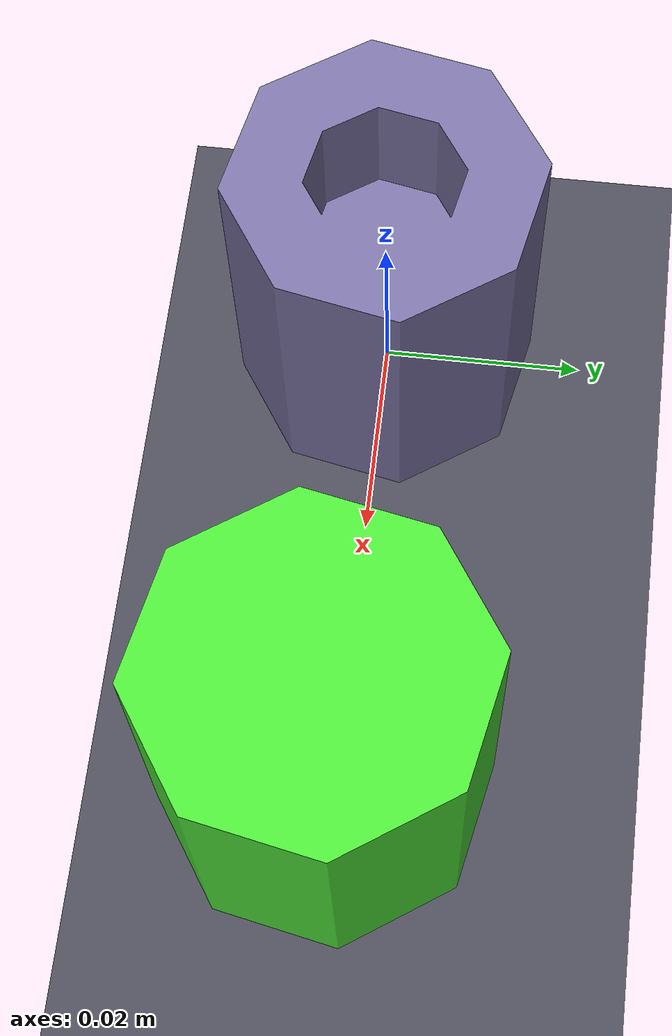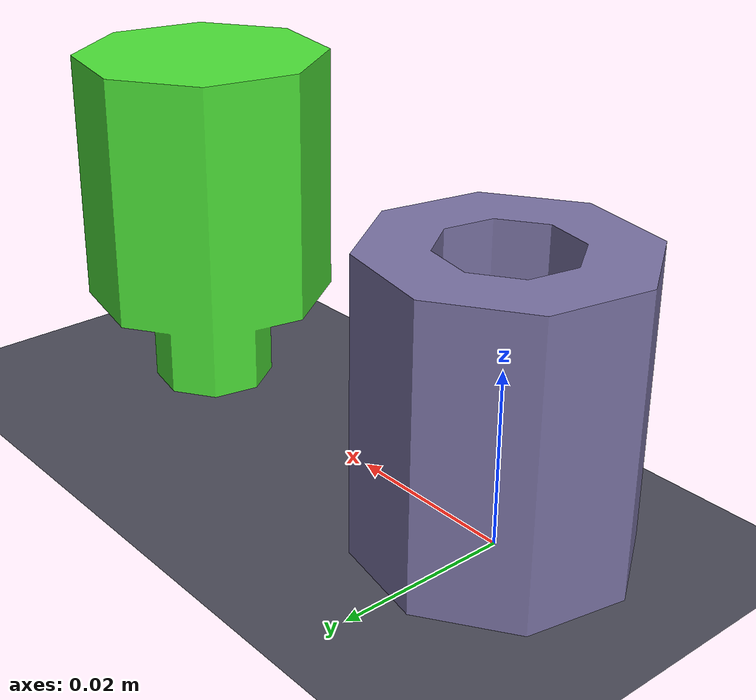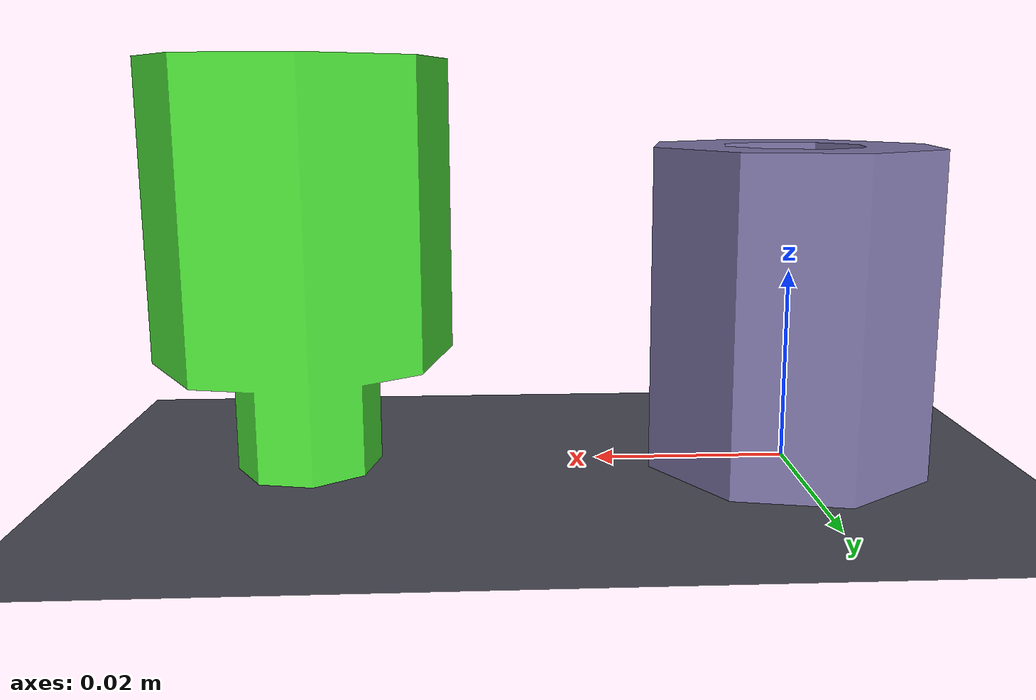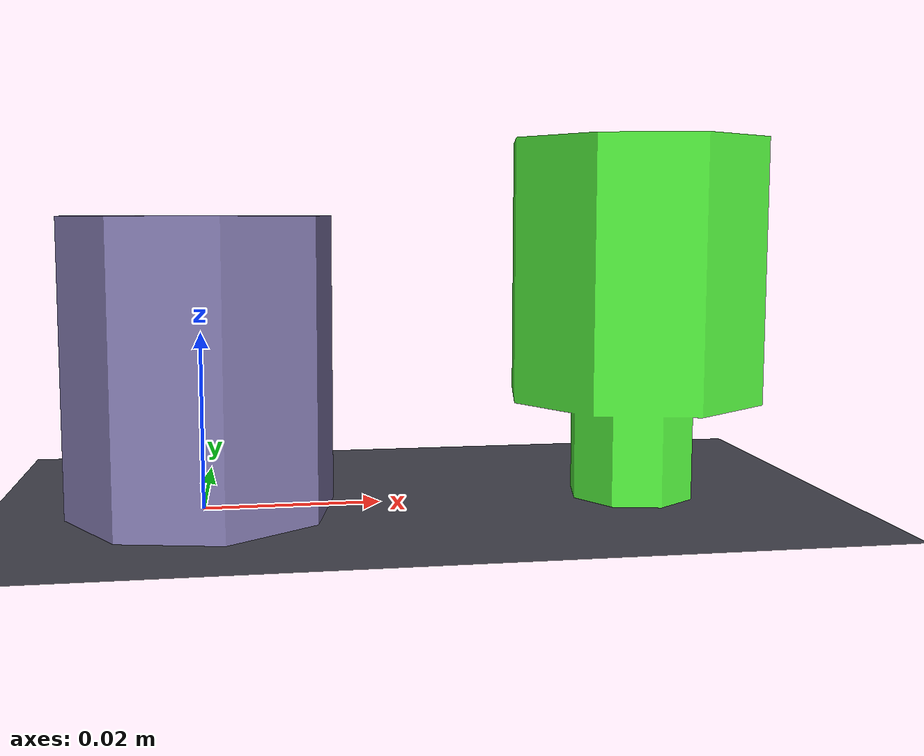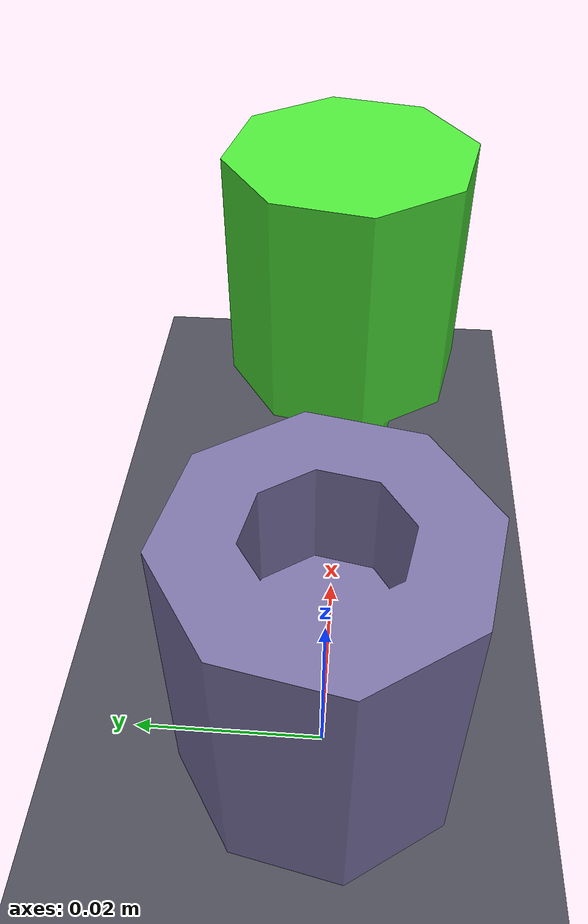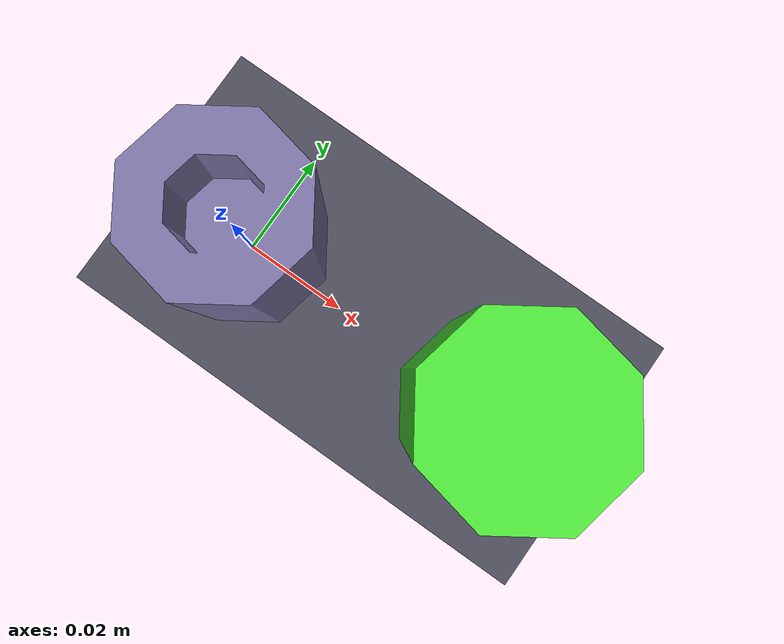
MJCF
<mujoco model="pair_00_octagon"><option gravity="0 0 -9.81" /><asset><texture type="skybox" builtin="gradient" rgb1="0.3 0.5 0.7" rgb2="0 0 0" width="256" height="1536" /><mesh name="peg_mesh" vertex="0.00000 0.00000 -0.02673  0.00000 0.00000 -0.02673  -0.00000 0.00000 -0.02673  -0.00000 0.00000 -0.02673  -0.00000 -0.00000 -0.02673  -0.00000 -0.00000 -0.02673  0.00000 -0.00000 -0.02673  0.00000 -0.00000 -0.02673  0.00678 0.00281 -0.02673  0.00281 0.00678 -0.02673  -0.00281 0.00678 -0.02673  -0.00678 0.00281 -0.02673  -0.00678 -0.00281 -0.02673  -0.00281 -0.00678 -0.02673  0.00281 -0.00678 -0.02673  0.00678 -0.00281 -0.02673  0.00678 0.00281 -0.01500  0.00281 0.00678 -0.01500  -0.00281 0.00678 -0.01500  -0.00678 0.00281 -0.01500  -0.00678 -0.00281 -0.01500  -0.00281 -0.00678 -0.01500  0.00281 -0.00678 -0.01500  0.00678 -0.00281 -0.01500  0.01394 0.00577 -0.01500  0.00577 0.01394 -0.01500  -0.00577 0.01394 -0.01500  -0.01394 0.00577 -0.01500  -0.01394 -0.00577 -0.01500  -0.00577 -0.01394 -0.01500  0.00577 -0.01394 -0.01500  0.01394 -0.00577 -0.01500  0.01394 0.00577 0.01500  0.00577 0.01394 0.01500  -0.00577 0.01394 0.01500  -0.01394 0.00577 0.01500  -0.01394 -0.00577 0.01500  -0.00577 -0.01394 0.01500  0.00577 -0.01394 0.01500  0.01394 -0.00577 0.01500  0.00000 0.00000 0.01500  0.00000 0.00000 0.01500  -0.00000 0.00000 0.01500  -0.00000 0.00000 0.01500  -0.00000 -0.00000 0.01500  -0.00000 -0.00000 0.01500  0.00000 -0.00000 0.01500  0.00000 -0.00000 0.01500" face="0 9 8  0 1 9  1 10 9  1 2 10  2 11 10  2 3 11  3 12 11  3 4 12  4 13 12  4 5 13  5 14 13  5 6 14  6 15 14  6 7 15  7 8 15  7 0 8  8 17 16  8 9 17  9 18 17  9 10 18  10 19 18  10 11 19  11 20 19  11 12 20  12 21 20  12 13 21  13 22 21  13 14 22  14 23 22  14 15 23  15 16 23  15 8 16  16 25 24  16 17 25  17 26 25  17 18 26  18 27 26  18 19 27  19 28 27  19 20 28  20 29 28  20 21 29  21 30 29  21 22 30  22 31 30  22 23 31  23 24 31  23 16 24  24 33 32  24 25 33  25 34 33  25 26 34  26 35 34  26 27 35  27 36 35  27 28 36  28 37 36  28 29 37  29 38 37  29 30 38  30 39 38  30 31 39  31 32 39  31 24 32  32 41 40  32 33 41  33 42 41  33 34 42  34 43 42  34 35 43  35 44 43  35 36 44  36 45 44  36 37 45  37 46 45  37 38 46  38 47 46  38 39 47  39 40 47  39 32 40" /><mesh name="socket_mesh" vertex="0.00000 0.00000 0.00000  0.00000 0.00000 0.00000  -0.00000 0.00000 0.00000  -0.00000 0.00000 0.00000  -0.00000 -0.00000 0.00000  -0.00000 -0.00000 0.00000  0.00000 -0.00000 0.00000  0.00000 -0.00000 0.00000  0.01394 0.00577 0.00000  0.00577 0.01394 0.00000  -0.00577 0.01394 0.00000  -0.01394 0.00577 0.00000  -0.01394 -0.00577 0.00000  -0.00577 -0.01394 0.00000  0.00577 -0.01394 0.00000  0.01394 -0.00577 0.00000  0.01394 0.00577 0.03302  0.00577 0.01394 0.03302  -0.00577 0.01394 0.03302  -0.01394 0.00577 0.03302  -0.01394 -0.00577 0.03302  -0.00577 -0.01394 0.03302  0.00577 -0.01394 0.03302  0.01394 -0.00577 0.03302  0.00692 0.00287 0.03302  0.00287 0.00692 0.03302  -0.00287 0.00692 0.03302  -0.00692 0.00287 0.03302  -0.00692 -0.00287 0.03302  -0.00287 -0.00692 0.03302  0.00287 -0.00692 0.03302  0.00692 -0.00287 0.03302  0.00692 0.00287 0.02129  0.00287 0.00692 0.02129  -0.00287 0.00692 0.02129  -0.00692 0.00287 0.02129  -0.00692 -0.00287 0.02129  -0.00287 -0.00692 0.02129  0.00287 -0.00692 0.02129  0.00692 -0.00287 0.02129  0.00000 0.00000 0.02129  0.00000 0.00000 0.02129  -0.00000 0.00000 0.02129  -0.00000 0.00000 0.02129  -0.00000 -0.00000 0.02129  -0.00000 -0.00000 0.02129  0.00000 -0.00000 0.02129  0.00000 -0.00000 0.02129" face="0 9 8  0 1 9  1 10 9  1 2 10  2 11 10  2 3 11  3 12 11  3 4 12  4 13 12  4 5 13  5 14 13  5 6 14  6 15 14  6 7 15  7 8 15  7 0 8  8 17 16  8 9 17  9 18 17  9 10 18  10 19 18  10 11 19  11 20 19  11 12 20  12 21 20  12 13 21  13 22 21  13 14 22  14 23 22  14 15 23  15 16 23  15 8 16  16 25 24  16 17 25  17 26 25  17 18 26  18 27 26  18 19 27  19 28 27  19 20 28  20 29 28  20 21 29  21 30 29  21 22 30  22 31 30  22 23 31  23 24 31  23 16 24  24 33 32  24 25 33  25 34 33  25 26 34  26 35 34  26 27 35  27 36 35  27 28 36  28 37 36  28 29 37  29 38 37  29 30 38  30 39 38  30 31 39  31 32 39  31 24 32  32 41 40  32 33 41  33 42 41  33 34 42  34 43 42  34 35 43  35 44 43  35 36 44  36 45 44  36 37 45  37 46 45  37 38 46  38 47 46  38 39 47  39 40 47  39 32 40" /></asset><worldbody><light pos="0 0 0.4" dir="0 0 -1" directional="true" /><geom name="floor" type="plane" size="0.3 0.3 0.05" rgba="0.3 0.3 0.35 1" /><body name="socket" pos="0 0 0" quat="-0.99503 0 0 0.09954"><geom name="socket" type="mesh" mesh="socket_mesh" rgba="0.485 0.455 0.650 1" contype="0" conaffinity="0" /></body><body name="peg" pos="0.05 0 0.02673" quat="-0.99503 0 0 0.09954"><geom name="peg" type="mesh" mesh="peg_mesh" rgba="0.306 0.900 0.225 1" mass="0.05" contype="0" conaffinity="0" /></body></worldbody></mujoco>
